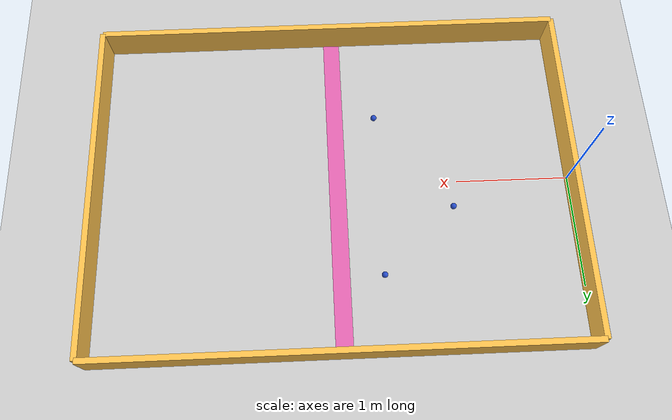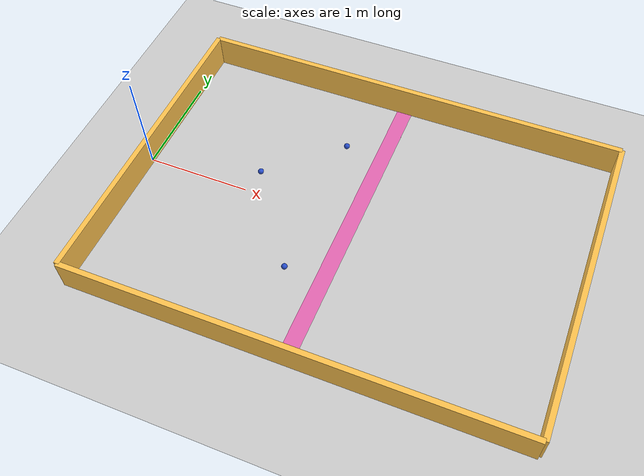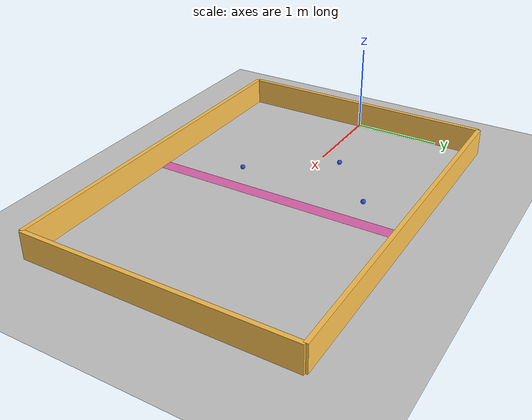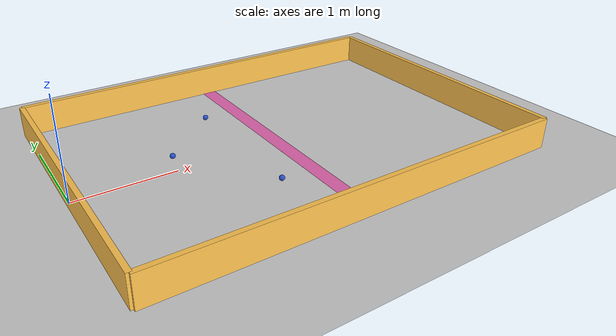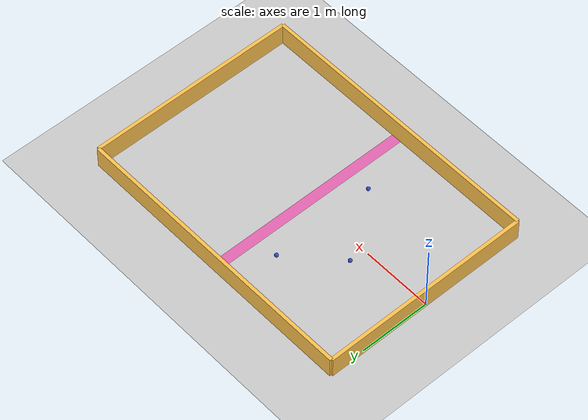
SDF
<sdf version="1.7">
 <world name="default">
  <light name="sun" type="directional">
   <pose>0 0 10 0 -0 0</pose>
   <diffuse>0.8 0.8 0.8 1</diffuse>
   <specular>0.2 0.2 0.2 1</specular>
   <attenuation>
    <range>1000</range>
    <constant>0.9</constant>
    <linear>0.01</linear>
    <quadratic>0.001</quadratic>
   </attenuation>
   <direction>-0.5 0.1 -0.9</direction>
   <spot><inner_angle>0</inner_angle><outer_angle>0</outer_angle><falloff>0</falloff></spot>
  </light>
  <model name="ground_plane">
   <static>1</static>
   <link name="link">
    <collision name="collision">
     <geometry><plane><normal>0 0 1</normal><size>100 100</size></plane></geometry>
     <surface>
      <contact><collide_bitmask>65535</collide_bitmask></contact>
      <friction><ode><mu>100</mu><mu2>50</mu2></ode></friction>
     </surface>
    </collision>
    <visual name="visual">
     <cast_shadows>0</cast_shadows>
     <geometry><plane><normal>0 0 1</normal><size>100 100</size></plane></geometry>
     <material>
      <script><uri>file://media/materials/scripts/gazebo.material</uri><name>Gazebo/Grey</name></script>
     </material>
    </visual>
   </link>
  </model>
  <gravity>0 0 -9.8</gravity>
  <magnetic_field>6e-06 2.3e-05 -4.2e-05</magnetic_field>
  <atmosphere type="adiabatic"/>
  <physics type="ode">
   <max_step_size>0.001</max_step_size>
   <real_time_factor>1</real_time_factor>
   <real_time_update_rate>1000</real_time_update_rate>
  </physics>
  <scene><ambient>0.4 0.4 0.4 1</ambient><background>0.7 0.7 0.7 1</background><shadows>1</shadows></scene>
  <spherical_coordinates>
   <surface_model>EARTH_WGS84</surface_model>
   <latitude_deg>0</latitude_deg>
   <longitude_deg>0</longitude_deg>
   <elevation>0</elevation>
   <heading_deg>0</heading_deg>
  </spherical_coordinates>
  <model name="DEBI_map">
   <pose>2.09977 0.00352 0 0 -0 0</pose>
   <link name="Wall_0">
    <collision name="Wall_0_Collision">
     <geometry><box><size>4.2 0.05 0.31</size></box></geometry>
     <pose>0 0 0.155 0 -0 0</pose>
    </collision>
    <visual name="Wall_0_Visual">
     <pose>0 0 0.155 0 -0 0</pose>
     <geometry><box><size>4.2 0.05 0.31</size></box></geometry>
     <material>
      <script><uri>file://media/materials/scripts/gazebo.material</uri><name>Gazebo/Grey</name></script>
      <ambient>1 0.764706 0.305882 1</ambient>
     </material>
     <meta><layer>0</layer></meta>
    </visual>
    <pose>0 1.5 0 0 -0 0</pose>
   </link>
   <link name="Wall_1">
    <collision name="Wall_1_Collision">
     <geometry><box><size>3 0.05 0.31</size></box></geometry>
     <pose>0 0 0.155 0 -0 0</pose>
    </collision>
    <visual name="Wall_1_Visual">
     <pose>0 0 0.155 0 -0 0</pose>
     <geometry><box><size>3 0.05 0.31</size></box></geometry>
     <material>
      <script><uri>file://media/materials/scripts/gazebo.material</uri><name>Gazebo/Grey</name></script>
      <ambient>1 0.764706 0.305882 1</ambient>
     </material>
     <meta><layer>0</layer></meta>
    </visual>
    <pose>2.1 0 0 0 -0 -1.5708</pose>
   </link>
   <link name="Wall_2">
    <collision name="Wall_2_Collision">
     <geometry><box><size>4.2 0.05 0.31</size></box></geometry>
     <pose>0 0 0.155 0 -0 0</pose>
    </collision>
    <visual name="Wall_2_Visual">
     <pose>0 0 0.155 0 -0 0</pose>
     <geometry><box><size>4.2 0.05 0.31</size></box></geometry>
     <material>
      <script><uri>file://media/materials/scripts/gazebo.material</uri><name>Gazebo/Grey</name></script>
      <ambient>1 0.764706 0.305882 1</ambient>
     </material>
     <meta><layer>0</layer></meta>
    </visual>
    <pose>0 -1.5 0 0 -0 3.14159</pose>
   </link>
   <link name="Wall_3">
    <collision name="Wall_3_Collision">
     <geometry><box><size>3 0.05 0.31</size></box></geometry>
     <pose>0 0 0.155 0 -0 0</pose>
    </collision>
    <visual name="Wall_3_Visual">
     <pose>0 0 0.155 0 -0 0</pose>
     <geometry><box><size>3 0.05 0.31</size></box></geometry>
     <material>
      <script><uri>file://media/materials/scripts/gazebo.material</uri><name>Gazebo/Grey</name></script>
      <ambient>1 0.764706 0.305882 1</ambient>
     </material>
     <meta><layer>0</layer></meta>
    </visual>
    <pose>-2.1 0 0 0 -0 1.5708</pose>
   </link>
   <static>1</static>
  </model>
  <model name="ball2">
   <link name="ball">
    <inertial>
     <mass>0.01</mass>
     <inertia>
      <ixx>3.025e-06</ixx>
      <ixy>0</ixy>
      <ixz>0</ixz>
      <iyy>3.025e-06</iyy>
      <iyz>0</iyz>
      <izz>3.025e-06</izz>
     </inertia>
    </inertial>
    <collision name="ball_collision">
     <geometry><sphere><radius>0.0275</radius></sphere></geometry>
     <surface><friction><ode><mu>0.08</mu><mu2>0.08</mu2></ode></friction></surface>
    </collision>
    <visual name="ball_visual">
     <geometry><sphere><radius>0.0275</radius></sphere></geometry>
     <material>
      <script><name>Gazebo/Blue</name><uri>file://media/materials/scripts/gazebo.material</uri></script>
     </material>
    </visual>
   </link>
   <pose>1.7 0.837757 0.0275 0 -0 0</pose>
  </model>
  <model name="DEBI_v3_0">
   <link name="link_0">
    <inertial>
     <mass>1</mass>
     <inertia>
      <ixx>0.166667</ixx>
      <ixy>0</ixy>
      <ixz>0</ixz>
      <iyy>0.166667</iyy>
      <iyz>0</iyz>
      <izz>0.166667</izz>
     </inertia>
    </inertial>
    <visual name="visual">
     <geometry><box><size>0.15 3 0.0001</size></box></geometry>
     <material>
      <lighting>1</lighting>
      <script><uri>file://media/materials/scripts/gazebo.material</uri><name>Gazebo/Grey</name></script>
      <shader type="pixel"><normal_map>__default__</normal_map></shader>
      <ambient>0.9 0.2 0.2 1</ambient>
      <diffuse>0.9 0.4 0.7 1</diffuse>
      <specular>0.71 0.01 0.01 1</specular>
      <emissive>0 0 0 1</emissive>
     </material>
    </visual>
    <collision name="collision">
     <geometry><box><size>0 0 0</size></box></geometry>
     <surface>
      <friction>
       <ode><mu>0.1</mu><mu2>0.1</mu2><fdir1>0 0 0</fdir1><slip1>0</slip1><slip2>0</slip2></ode>
       <torsional>
        <coefficient>1</coefficient>
        <patch_radius>0</patch_radius>
        <surface_radius>0</surface_radius>
        <use_patch_radius>1</use_patch_radius>
        <ode><slip>0</slip></ode>
       </torsional>
      </friction>
      <bounce><restitution_coefficient>0</restitution_coefficient><threshold>1e+06</threshold></bounce>
      <contact>
       <collide_without_contact>0</collide_without_contact>
       <collide_without_contact_bitmask>1</collide_without_contact_bitmask>
       <collide_bitmask>1</collide_bitmask>
       <ode>
        <soft_cfm>0</soft_cfm>
        <soft_erp>0.2</soft_erp>
        <kp>1e+13</kp>
        <kd>1</kd>
        <max_vel>0.01</max_vel>
        <min_depth>0</min_depth>
       </ode>
       <bullet>
        <split_impulse>1</split_impulse>
        <split_impulse_penetration_threshold>-0.01</split_impulse_penetration_threshold>
        <soft_cfm>0</soft_cfm>
        <soft_erp>0.2</soft_erp>
        <kp>1e+13</kp>
        <kd>1</kd>
       </bullet>
      </contact>
     </surface>
    </collision>
   </link>
   <static>1</static>
   <pose>2.07193 0.005253 0.001881 0 -0 0</pose>
  </model>
  <model name="ball2_clone">
   <link name="ball">
    <inertial>
     <mass>0.01</mass>
     <inertia>
      <ixx>3.025e-06</ixx>
      <ixy>0</ixy>
      <ixz>0</ixz>
      <iyy>3.025e-06</iyy>
      <iyz>0</iyz>
      <izz>3.025e-06</izz>
     </inertia>
    </inertial>
    <collision name="ball_collision">
     <geometry><sphere><radius>0.0275</radius></sphere></geometry>
     <surface><friction><ode><mu>0.08</mu><mu2>0.08</mu2></ode></friction></surface>
    </collision>
    <visual name="ball_visual">
     <geometry><sphere><radius>0.0275</radius></sphere></geometry>
     <material>
      <script><name>Gazebo/Blue</name><uri>file://media/materials/scripts/gazebo.material</uri></script>
     </material>
    </visual>
   </link>
   <pose>1.05231 0.239602 0.0275 0 -0 0</pose>
  </model>
  <model name="ball2_clone_0">
   <link name="ball">
    <inertial>
     <mass>0.01</mass>
     <inertia>
      <ixx>3.025e-06</ixx>
      <ixy>0</ixy>
      <ixz>0</ixz>
      <iyy>3.025e-06</iyy>
      <iyz>0</iyz>
      <izz>3.025e-06</izz>
     </inertia>
    </inertial>
    <collision name="ball_collision">
     <geometry><sphere><radius>0.0275</radius></sphere></geometry>
     <surface><friction><ode><mu>0.08</mu><mu2>0.08</mu2></ode></friction></surface>
    </collision>
    <visual name="ball_visual">
     <geometry><sphere><radius>0.0275</radius></sphere></geometry>
     <material>
      <script><name>Gazebo/Blue</name><uri>file://media/materials/scripts/gazebo.material</uri></script>
     </material>
    </visual>
   </link>
   <pose>1.70737 -0.661091 0.0275 0 -0 0</pose>
  </model>
 </world>
</sdf>
